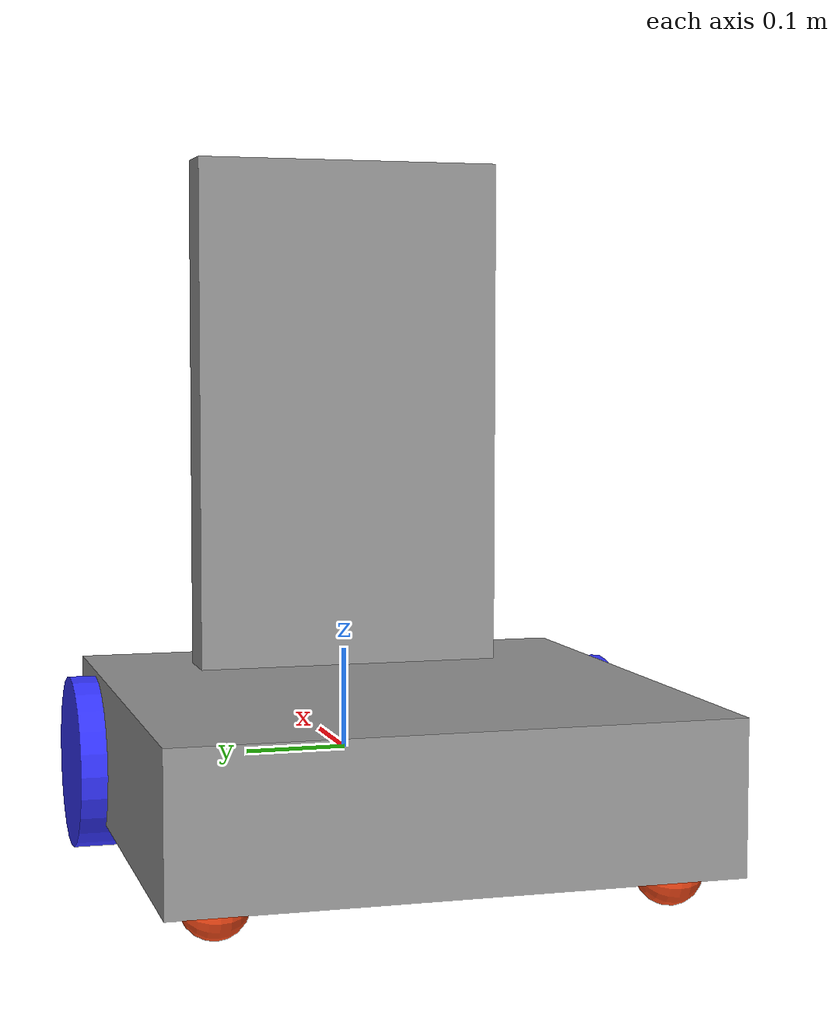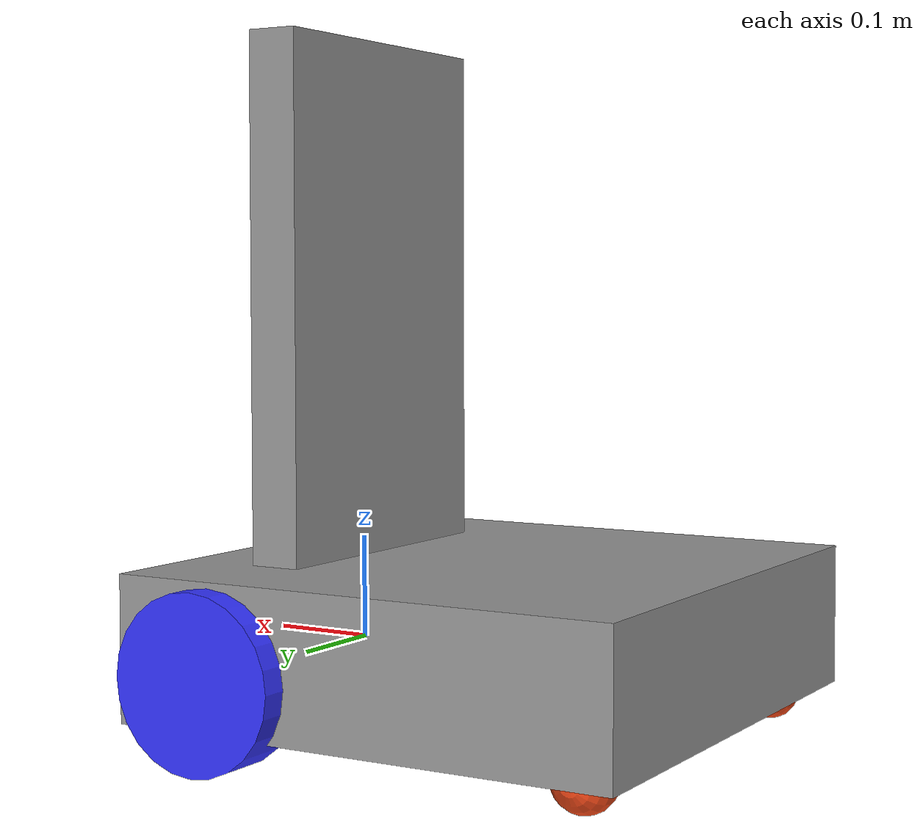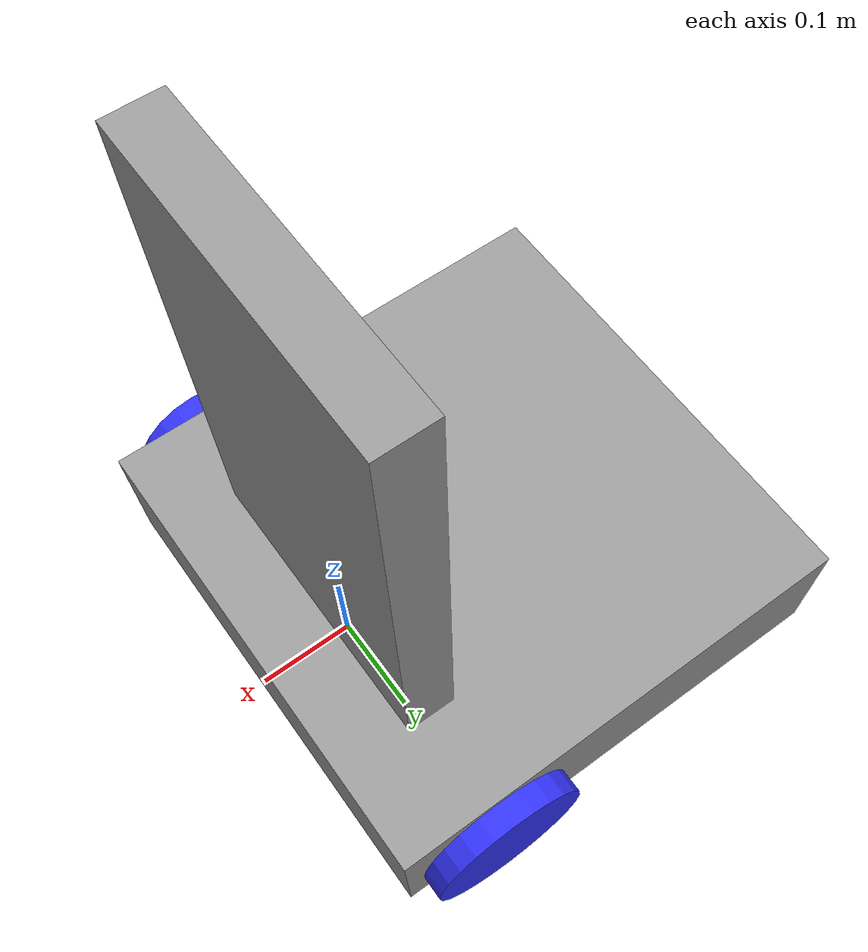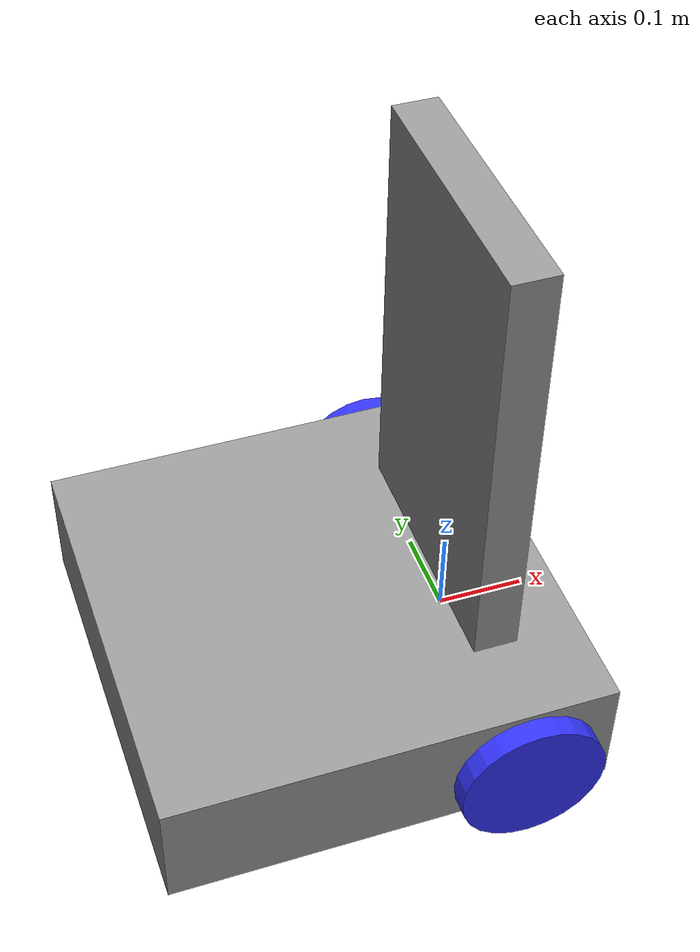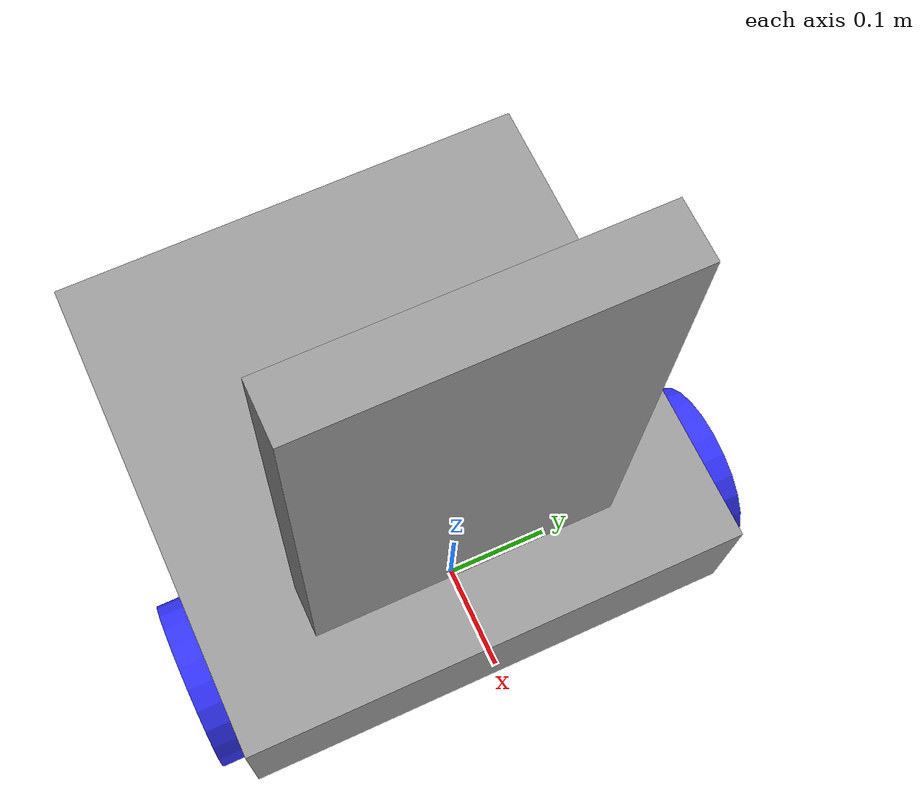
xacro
<?xml version="1.0"?>
<robot xmlns:xacro="http://www.ros.org/wiki/xacro" >

    <xacro:include filename="inertial_macros.xacro"/>

    <xacro:property name="chassis_length" value="0.5"/>
    <xacro:property name="chassis_width" value="0.5"/>
    <xacro:property name="chassis_height" value="0.138"/>
    <xacro:property name="chassis_mass" value="1.5"/>    <!-- nilai asal-->
    <xacro:property name="chassis_upper_length" value = "0.05"/>
    <xacro:property name="chassis_upper_width" value = "0.30"/>
    <xacro:property name="chassis_upper_height" value = "0.515"/>
    <xacro:property name="chassis_upper_mass" value = "0.01"/>
    <xacro:property name="chassis_offset_z" value = "${chassis_upper_height/2 + chassis_height/2}"/>
    <xacro:property name="wheel_radius" value="0.0825"/>
    <xacro:property name="wheel_thickness" value="0.05"/>
    <xacro:property name="wheel_mass" value="2.0"/>    <!-- nilai asal-->
    <xacro:property name="wheel_offset_x" value="0.1"/>
    <xacro:property name="wheel_offset_y" value="0.25"/>    <!-- nilai asal-->
    <xacro:property name="wheel_offset_z" value="0.05"/>
    <xacro:property name="caster_wheel_radius" value="0.03"/>
    <xacro:property name="caster_wheel_mass" value="1.0"/>     <!-- nilai asal-->
    <xacro:property name="caster_wheel_offset_x" value="0.45"/>
    <xacro:property name="caster_wheel_offset_y" value="0.20"/>  <!-- nilai asal-->
    <xacro:property name="caster_wheel_offset_z" value="${wheel_offset_z - wheel_radius + caster_wheel_radius}"/>

    <material name="white">
        <color rgba="1 1 1 1" />
    </material>

    <material name="gray">
        <color rgba="0.6 0.6 0.6 1" />
    </material>

    <material name="orange">
        <color rgba="1 0.3 0.1 1" />
    </material>

    <material name="blue">
        <color rgba="0.2 0.2 1 1" />
    </material>

    <material name="black">
        <color rgba="0 0 0 1" />
    </material>

    <material name="red">
        <color rgba="1 0 0 1" />
    </material>

    <!-- BASE LINK -->

    <link name="base_link">

    </link>

    <!-- BASE_FOOTPRINT LINK -->

    <joint name="base_footprint_joint" type="fixed">
        <parent link="base_link" />
        <child link="base_footprint"/>
        <origin xyz="0 0 0" rpy="0 0 0"/>
    </joint>

    <link name="base_footprint">
    </link>

    <!-- CHASSIS LINK -->

    <joint name="chassis_joint" type="fixed">
        <parent link="base_link" />
        <child link="chassis" />
        <origin xyz="${wheel_offset_x} 0 ${-wheel_offset_z}" />   <!-- titik cartesian untuk robot-->
    </joint>

    <link name="chassis">
        <visual>
            <origin xyz = "${-chassis_length/2} 0 ${chassis_height/2}" />  <!-- titik cartesian untuk rangka badan-->
            <geometry>
                <box size= "${chassis_length} ${chassis_width} ${chassis_height}" />   <!-- geometry dari rangka badan xyz = 30x30x15 cm-->
            </geometry>
            <material name ="gray"/>
        </visual>
        <collision>
            <origin xyz = "${chassis_length/2} 0 ${chassis_height/2}" />  <!-- titik cartesian untuk rangka badan-->
            <geometry>
                <box size= "${chassis_length} ${chassis_width} ${chassis_height}" />   <!-- geometry dari rangka badan xyz = 30x30x15 cm-->
            </geometry>
        </collision>
        <xacro:inertial_box mass="${chassis_mass}" x="${chassis_length}" y="${chassis_width}" z="${chassis_height}">
            <origin xyz="${chassis_length/2} 0 ${chassis_height/2}" rpy="0 0 0"/>
        </xacro:inertial_box>
    </link>

    <gazebo reference="chassis">
        <material>Gazebo/Gray</material>
    </gazebo>

    <!-- CHASSIS UPPER LINK -->

    <joint name="chassis_upper_joint" type="fixed">
        <parent link="base_link" />
        <child link="chassis_upper" />
        <origin xyz="0 0 ${chassis_offset_z}" />   <!--titik cartesian untuk robot-->
    </joint>

    <link name="chassis_upper">
        <visual>
            <geometry>
                <box size= "${chassis_upper_length} ${chassis_upper_width} ${chassis_upper_height}" />   <!--geometry dari rangka badan xyz = 15x15x30 cm -->
            </geometry>
            <material name ="gray"/>
        </visual>
        <collision>
            <geometry>
                <box size= "${chassis_upper_length} ${chassis_upper_width} ${chassis_upper_height}" />   <!--geometry dari rangka badan xyz = 15x15x30 cm-->
            </geometry>
        </collision>
        <xacro:inertial_box mass="${chassis_upper_mass}" x="${chassis_upper_length}" y="${chassis_upper_width}" z="${chassis_upper_height}">
            <origin xyz="0 0 0" rpy="0 0 0"/>
        </xacro:inertial_box>
    </link>

    <gazebo reference="chassis_upper">
        <material>Gazebo/Gray</material>
    </gazebo>

    <!-- LEFT WHEEL LINK -->

    <joint name="left_wheel_joint" type="continuous">
        <parent link="base_link"/>
        <child link="left_wheel"/>
        <origin xyz="0 ${wheel_offset_y} 0" rpy="${-pi/2} 0 0"/>
        <axis xyz = "0 0 1"/>
    </joint>

    <link name="left_wheel">
        <visual>
            <geometry>
                <cylinder radius="${wheel_radius}" length="${wheel_thickness}"/>   <!-- geometry dari roda kiri-->
            </geometry>
            <material name="blue"/>
        </visual>
        <collision>
            <geometry>
                <sphere radius="${wheel_radius}"/>   <!-- collision dari roda kiri-->
            </geometry>
        </collision>
        <xacro:inertial_cylinder mass="${wheel_mass}" length="${wheel_thickness}" radius="${wheel_radius}">
            <origin xyz="0 0 0" rpy="0 0 0"/>
        </xacro:inertial_cylinder>
    </link>

    <gazebo reference="left_wheel">
        <material>Gazebo/Blue</material>
    </gazebo>

    <!-- RIGHT WHEEL LINK -->

    <joint name="right_wheel_joint" type="continuous">
        <parent link="base_link"/>
        <child link="right_wheel"/>
        <origin xyz="0 ${-wheel_offset_y} 0" rpy="${pi/2} 0 0"/>
        <axis xyz = "0 0 -1"/>
    </joint>

    <link name="right_wheel">
        <visual>
            <geometry>
                <cylinder radius="${wheel_radius}" length="${wheel_thickness}"/>   <!-- geometry dari roda kiri-->
            </geometry>
            <material name="blue"/>
        </visual>
        <collision>
            <geometry>
                <sphere radius="0.0815" length="0.05"/>   <!-- collision dari roda kiri-->
            </geometry>
        </collision>
        <xacro:inertial_cylinder mass="${wheel_mass}" length="${wheel_thickness}" radius="${wheel_radius}">
            <origin xyz="0 0 0" rpy="0 0 0"/>
        </xacro:inertial_cylinder>
    </link>

    <gazebo reference="right_wheel">
        <material>Gazebo/Blue</material>
    </gazebo>

    <!-- CASTER WHEEL LEFT LINK -->

    <joint name="left_caster_wheel_joint" type="fixed">
        <parent link="chassis" />
        <child link="left_caster_wheel" />
        <origin xyz="${-caster_wheel_offset_x} ${caster_wheel_offset_y} ${caster_wheel_offset_z}" rpy="${-pi/2} 0 0"/>
        <axis xyz = "0 0 1"/>
    </joint>

    <link name="left_caster_wheel">
        <visual>
            <geometry>
                <sphere radius="${caster_wheel_radius}"/>
            </geometry>
            <material name="orange"/>
        </visual>
        <collision>
            <geometry>
                <sphere radius="${caster_wheel_radius}"/>
            </geometry>
        </collision>
        <xacro:inertial_sphere mass="${caster_wheel_mass}" radius="${caster_wheel_radius}">
            <origin xyz="0 0 0" rpy="0 0 0"/>
        </xacro:inertial_sphere>
    </link>

    <gazebo reference="left_caster_wheel">
        <material>Gazebo/Orange</material>
        <mu1 value="0.001"/>
        <mu2 value="0.001"/>
    </gazebo>

    <!-- CASTER WHEEL RIGHT LINK -->

    <joint name="right_caster_wheel_joint" type="fixed">
        <parent link="chassis" />
        <child link="right_caster_wheel" />
        <origin xyz="${-caster_wheel_offset_x} ${-caster_wheel_offset_y} ${caster_wheel_offset_z}" rpy="${pi/2} 0 0"/>
        <axis xyz = "0 0 -1"/>
    </joint>

    <link name="right_caster_wheel">
        <visual>
            <geometry>
                <sphere radius="${caster_wheel_radius}"/>
            </geometry>
            <material name="orange"/>
        </visual>
        <collision>
            <geometry>
                <sphere radius="${caster_wheel_radius}"/>
            </geometry>
        </collision>
        <xacro:inertial_sphere mass="${caster_wheel_mass}" radius="${caster_wheel_radius}">
            <origin xyz="0 0 0" rpy="0 0 0"/>
        </xacro:inertial_sphere>
    </link>

    <gazebo reference="right_caster_wheel">
        <material>Gazebo/Orange</material>
        <mu1 value="0.001"/>
        <mu2 value="0.001"/>
    </gazebo>

</robot>
